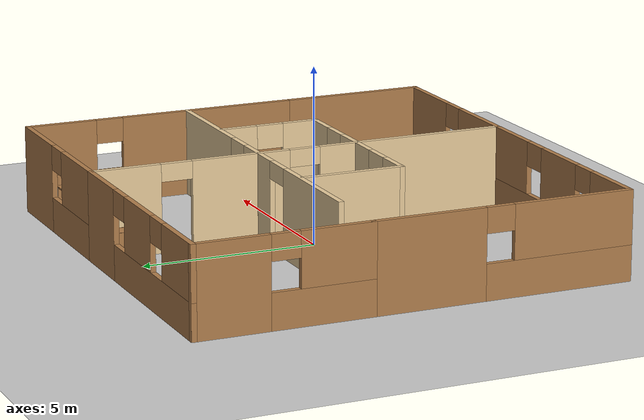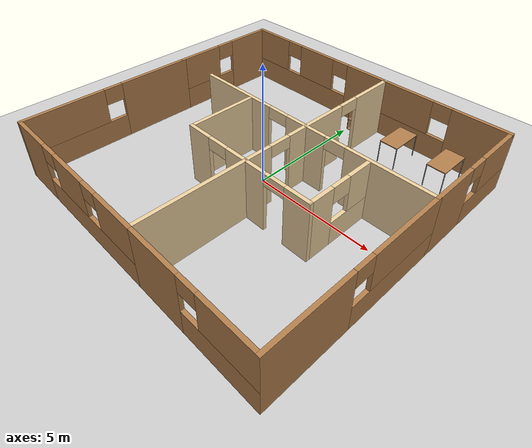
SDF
<sdf version="1.6">
 <world name="default">
  <model name="ground_plane">
   <static>1</static>
   <link name="link">
    <collision name="collision">
     <geometry><plane><normal>0 0 1</normal><size>100 100</size></plane></geometry>
     <surface><friction><ode><mu>100</mu><mu2>50</mu2></ode></friction></surface>
    </collision>
    <visual name="visual">
     <cast_shadows>0</cast_shadows>
     <geometry><plane><normal>0 0 1</normal><size>100 100</size></plane></geometry>
     <material>
      <script><uri>file://media/materials/scripts/gazebo.material</uri><name>Gazebo/Grey</name></script>
     </material>
    </visual>
   </link>
  </model>
  <model name="building">
   <pose>-0.005642 -0.05216 0 0 -0 1.56564</pose>
   <link name="Wall_40">
    <pose>-2.425 -6.35 0 0 -0 0</pose>
    <visual name="Wall_40_Visual_0">
     <pose>-2.0357 0 1.25 0 -0 0</pose>
     <geometry><box><size>3.42859 0.15 2.5</size></box></geometry>
     <material>
      <script><uri>file://media/materials/scripts/gazebo.material</uri><name>Gazebo/Wood</name></script>
      <ambient>0.921569 0.807843 0.615686 1</ambient>
     </material>
    </visual>
    <collision name="Wall_40_Collision_0">
     <geometry><box><size>3.42859 0.15 2.5</size></box></geometry>
     <pose>-2.0357 0 1.25 0 -0 0</pose>
    </collision>
    <visual name="Wall_40_Visual_1">
     <pose>1.7143 0 0.5 0 -0 0</pose>
     <geometry><box><size>4.07141 0.15 1</size></box></geometry>
     <material>
      <script><uri>file://media/materials/scripts/gazebo.material</uri><name>Gazebo/Wood</name></script>
      <ambient>0.921569 0.807843 0.615686 1</ambient>
     </material>
    </visual>
    <collision name="Wall_40_Collision_1">
     <geometry><box><size>4.07141 0.15 1</size></box></geometry>
     <pose>1.7143 0 0.5 0 -0 0</pose>
    </collision>
    <visual name="Wall_40_Visual_2">
     <pose>2.1143 0 1.75 0 -0 0</pose>
     <geometry><box><size>3.27141 0.15 1.5</size></box></geometry>
     <material>
      <script><uri>file://media/materials/scripts/gazebo.material</uri><name>Gazebo/Wood</name></script>
      <ambient>0.921569 0.807843 0.615686 1</ambient>
     </material>
    </visual>
    <collision name="Wall_40_Collision_2">
     <geometry><box><size>3.27141 0.15 1.5</size></box></geometry>
     <pose>2.1143 0 1.75 0 -0 0</pose>
    </collision>
    <visual name="Wall_40_Visual_3">
     <pose>0.078591 0 2.15 0 -0 0</pose>
     <geometry><box><size>0.8 0.15 0.7</size></box></geometry>
     <material>
      <script><uri>file://media/materials/scripts/gazebo.material</uri><name>Gazebo/Wood</name></script>
      <ambient>0.921569 0.807843 0.615686 1</ambient>
     </material>
    </visual>
    <collision name="Wall_40_Collision_3">
     <geometry><box><size>0.8 0.15 0.7</size></box></geometry>
     <pose>0.078591 0 2.15 0 -0 0</pose>
    </collision>
   </link>
   <link name="Wall_42">
    <pose>1.25 -3.675 0 0 -0 1.5708</pose>
    <visual name="Wall_42_Visual_0">
     <pose>-0.950683 0 1.25 0 -0 0</pose>
     <geometry><box><size>3.59863 0.15 2.5</size></box></geometry>
     <material>
      <script><uri>file://media/materials/scripts/gazebo.material</uri><name>Gazebo/Grey</name></script>
      <ambient>0.921569 0.807843 0.615686 1</ambient>
     </material>
    </visual>
    <collision name="Wall_42_Collision_0">
     <geometry><box><size>3.59863 0.15 2.5</size></box></geometry>
     <pose>-0.950683 0 1.25 0 -0 0</pose>
    </collision>
    <visual name="Wall_42_Visual_1">
     <pose>2.24932 0 1.25 0 -0 0</pose>
     <geometry><box><size>1.00137 0.15 2.5</size></box></geometry>
     <material>
      <script><uri>file://media/materials/scripts/gazebo.material</uri><name>Gazebo/Grey</name></script>
      <ambient>0.921569 0.807843 0.615686 1</ambient>
     </material>
    </visual>
    <collision name="Wall_42_Collision_1">
     <geometry><box><size>1.00137 0.15 2.5</size></box></geometry>
     <pose>2.24932 0 1.25 0 -0 0</pose>
    </collision>
    <visual name="Wall_42_Visual_2">
     <pose>1.29863 0 2.25 0 -0 0</pose>
     <geometry><box><size>0.9 0.15 0.5</size></box></geometry>
     <material>
      <script><uri>file://media/materials/scripts/gazebo.material</uri><name>Gazebo/Grey</name></script>
      <ambient>0.921569 0.807843 0.615686 1</ambient>
     </material>
    </visual>
    <collision name="Wall_42_Collision_2">
     <geometry><box><size>0.9 0.15 0.5</size></box></geometry>
     <pose>1.29863 0 2.25 0 -0 0</pose>
    </collision>
   </link>
   <link name="Wall_44">
    <pose>3.675 -6.35 0 0 -0 0</pose>
    <visual name="Wall_44_Visual_0">
     <pose>-1.44849 0 1.25 0 -0 0</pose>
     <geometry><box><size>2.10302 0.15 2.5</size></box></geometry>
     <material>
      <script><uri>file://media/materials/scripts/gazebo.material</uri><name>Gazebo/Wood</name></script>
      <ambient>0.921569 0.807843 0.615686 1</ambient>
     </material>
    </visual>
    <collision name="Wall_44_Collision_0">
     <geometry><box><size>2.10302 0.15 2.5</size></box></geometry>
     <pose>-1.44849 0 1.25 0 -0 0</pose>
    </collision>
    <visual name="Wall_44_Visual_1">
     <pose>1.05151 0 0.5 0 -0 0</pose>
     <geometry><box><size>2.89698 0.15 1</size></box></geometry>
     <material>
      <script><uri>file://media/materials/scripts/gazebo.material</uri><name>Gazebo/Wood</name></script>
      <ambient>0.921569 0.807843 0.615686 1</ambient>
     </material>
    </visual>
    <collision name="Wall_44_Collision_1">
     <geometry><box><size>2.89698 0.15 1</size></box></geometry>
     <pose>1.05151 0 0.5 0 -0 0</pose>
    </collision>
    <visual name="Wall_44_Visual_2">
     <pose>1.45151 0 1.75 0 -0 0</pose>
     <geometry><box><size>2.09698 0.15 1.5</size></box></geometry>
     <material>
      <script><uri>file://media/materials/scripts/gazebo.material</uri><name>Gazebo/Wood</name></script>
      <ambient>0.921569 0.807843 0.615686 1</ambient>
     </material>
    </visual>
    <collision name="Wall_44_Collision_2">
     <geometry><box><size>2.09698 0.15 1.5</size></box></geometry>
     <pose>1.45151 0 1.75 0 -0 0</pose>
    </collision>
    <visual name="Wall_44_Visual_3">
     <pose>0.003019 0 2.15 0 -0 0</pose>
     <geometry><box><size>0.8 0.15 0.7</size></box></geometry>
     <material>
      <script><uri>file://media/materials/scripts/gazebo.material</uri><name>Gazebo/Wood</name></script>
      <ambient>0.921569 0.807843 0.615686 1</ambient>
     </material>
    </visual>
    <collision name="Wall_44_Collision_3">
     <geometry><box><size>0.8 0.15 0.7</size></box></geometry>
     <pose>0.003019 0 2.15 0 -0 0</pose>
    </collision>
   </link>
   <link name="Wall_46">
    <pose>6.1 -3.675 0 0 -0 1.5708</pose>
    <visual name="Wall_46_Visual_0">
     <pose>-1.57528 0 1.25 0 -0 0</pose>
     <geometry><box><size>2.34944 0.15 2.5</size></box></geometry>
     <material>
      <script><uri>file://media/materials/scripts/gazebo.material</uri><name>Gazebo/Wood</name></script>
      <ambient>0.921569 0.807843 0.615686 1</ambient>
     </material>
    </visual>
    <collision name="Wall_46_Collision_0">
     <geometry><box><size>2.34944 0.15 2.5</size></box></geometry>
     <pose>-1.57528 0 1.25 0 -0 0</pose>
    </collision>
    <visual name="Wall_46_Visual_1">
     <pose>1.17472 0 0.5 0 -0 0</pose>
     <geometry><box><size>3.15056 0.15 1</size></box></geometry>
     <material>
      <script><uri>file://media/materials/scripts/gazebo.material</uri><name>Gazebo/Wood</name></script>
      <ambient>0.921569 0.807843 0.615686 1</ambient>
     </material>
    </visual>
    <collision name="Wall_46_Collision_1">
     <geometry><box><size>3.15056 0.15 1</size></box></geometry>
     <pose>1.17472 0 0.5 0 -0 0</pose>
    </collision>
    <visual name="Wall_46_Visual_2">
     <pose>1.57472 0 1.75 0 -0 0</pose>
     <geometry><box><size>2.35056 0.15 1.5</size></box></geometry>
     <material>
      <script><uri>file://media/materials/scripts/gazebo.material</uri><name>Gazebo/Wood</name></script>
      <ambient>0.921569 0.807843 0.615686 1</ambient>
     </material>
    </visual>
    <collision name="Wall_46_Collision_2">
     <geometry><box><size>2.35056 0.15 1.5</size></box></geometry>
     <pose>1.57472 0 1.75 0 -0 0</pose>
    </collision>
    <visual name="Wall_46_Visual_3">
     <pose>-0.000563 0 2.15 0 -0 0</pose>
     <geometry><box><size>0.8 0.15 0.7</size></box></geometry>
     <material>
      <script><uri>file://media/materials/scripts/gazebo.material</uri><name>Gazebo/Wood</name></script>
      <ambient>0.921569 0.807843 0.615686 1</ambient>
     </material>
    </visual>
    <collision name="Wall_46_Collision_3">
     <geometry><box><size>0.8 0.15 0.7</size></box></geometry>
     <pose>-0.000563 0 2.15 0 -0 0</pose>
    </collision>
   </link>
   <link name="Wall_48">
    <pose>3.67486 -1.00009 0 0 0 -3.14155</pose>
    <visual name="Wall_48_Visual_0">
     <pose>-1.47793 0 1.25 0 -0 0</pose>
     <geometry><box><size>2.04441 0.15 2.5</size></box></geometry>
     <material>
      <script><uri>file://media/materials/scripts/gazebo.material</uri><name>Gazebo/Grey</name></script>
      <ambient>0.921569 0.807843 0.615686 1</ambient>
     </material>
    </visual>
    <collision name="Wall_48_Collision_0">
     <geometry><box><size>2.04441 0.15 2.5</size></box></geometry>
     <pose>-1.47793 0 1.25 0 -0 0</pose>
    </collision>
    <visual name="Wall_48_Visual_1">
     <pose>1.47221 0 1.25 0 -0 0</pose>
     <geometry><box><size>2.05587 0.15 2.5</size></box></geometry>
     <material>
      <script><uri>file://media/materials/scripts/gazebo.material</uri><name>Gazebo/Grey</name></script>
      <ambient>0.921569 0.807843 0.615686 1</ambient>
     </material>
    </visual>
    <collision name="Wall_48_Collision_1">
     <geometry><box><size>2.05587 0.15 2.5</size></box></geometry>
     <pose>1.47221 0 1.25 0 -0 0</pose>
    </collision>
    <visual name="Wall_48_Visual_2">
     <pose>-0.005726 0 2.25 0 -0 0</pose>
     <geometry><box><size>0.9 0.15 0.5</size></box></geometry>
     <material>
      <script><uri>file://media/materials/scripts/gazebo.material</uri><name>Gazebo/Grey</name></script>
      <ambient>0.921569 0.807843 0.615686 1</ambient>
     </material>
    </visual>
    <collision name="Wall_48_Collision_2">
     <geometry><box><size>0.9 0.15 0.5</size></box></geometry>
     <pose>-0.005726 0 2.25 0 -0 0</pose>
    </collision>
   </link>
   <link name="Wall_50">
    <pose>-0.22106 -1.00009 0 0 -0 3.14153</pose>
    <visual name="Wall_50_Visual_0">
     <pose>-1.05843 0 1.25 0 -0 0</pose>
     <geometry><box><size>0.974695 0.15 2.5</size></box></geometry>
     <material>
      <script><uri>file://media/materials/scripts/gazebo.material</uri><name>Gazebo/Grey</name></script>
      <ambient>0.921569 0.807843 0.615686 1</ambient>
     </material>
    </visual>
    <collision name="Wall_50_Collision_0">
     <geometry><box><size>0.974695 0.15 2.5</size></box></geometry>
     <pose>-1.05843 0 1.25 0 -0 0</pose>
    </collision>
    <visual name="Wall_50_Visual_1">
     <pose>0.937348 0 1.25 0 -0 0</pose>
     <geometry><box><size>1.21686 0.15 2.5</size></box></geometry>
     <material>
      <script><uri>file://media/materials/scripts/gazebo.material</uri><name>Gazebo/Grey</name></script>
      <ambient>0.921569 0.807843 0.615686 1</ambient>
     </material>
    </visual>
    <collision name="Wall_50_Collision_1">
     <geometry><box><size>1.21686 0.15 2.5</size></box></geometry>
     <pose>0.937348 0 1.25 0 -0 0</pose>
    </collision>
    <visual name="Wall_50_Visual_2">
     <pose>-0.121083 0 2.25 0 -0 0</pose>
     <geometry><box><size>0.9 0.15 0.5</size></box></geometry>
     <material>
      <script><uri>file://media/materials/scripts/gazebo.material</uri><name>Gazebo/Grey</name></script>
      <ambient>0.921569 0.807843 0.615686 1</ambient>
     </material>
    </visual>
    <collision name="Wall_50_Collision_2">
     <geometry><box><size>0.9 0.15 0.5</size></box></geometry>
     <pose>-0.121083 0 2.25 0 -0 0</pose>
    </collision>
   </link>
   <link name="Wall_52">
    <pose>-1.69184 -2.425 0 0 0 -1.5708</pose>
    <visual name="Wall_52_Visual_0">
     <pose>-0.996807 0 1.25 0 -0 0</pose>
     <geometry><box><size>1.00639 0.15 2.5</size></box></geometry>
     <material>
      <script><uri>file://media/materials/scripts/gazebo.material</uri><name>Gazebo/Grey</name></script>
      <ambient>0.921569 0.807843 0.615686 1</ambient>
     </material>
    </visual>
    <collision name="Wall_52_Collision_0">
     <geometry><box><size>1.00639 0.15 2.5</size></box></geometry>
     <pose>-0.996807 0 1.25 0 -0 0</pose>
    </collision>
    <visual name="Wall_52_Visual_1">
     <pose>0.953193 0 1.25 0 -0 0</pose>
     <geometry><box><size>1.09362 0.15 2.5</size></box></geometry>
     <material>
      <script><uri>file://media/materials/scripts/gazebo.material</uri><name>Gazebo/Grey</name></script>
      <ambient>0.921569 0.807843 0.615686 1</ambient>
     </material>
    </visual>
    <collision name="Wall_52_Collision_1">
     <geometry><box><size>1.09362 0.15 2.5</size></box></geometry>
     <pose>0.953193 0 1.25 0 -0 0</pose>
    </collision>
    <visual name="Wall_52_Visual_2">
     <pose>-0.043615 0 2.25 0 -0 0</pose>
     <geometry><box><size>0.9 0.15 0.5</size></box></geometry>
     <material>
      <script><uri>file://media/materials/scripts/gazebo.material</uri><name>Gazebo/Grey</name></script>
      <ambient>0.921569 0.807843 0.615686 1</ambient>
     </material>
    </visual>
    <collision name="Wall_52_Collision_2">
     <geometry><box><size>0.9 0.15 0.5</size></box></geometry>
     <pose>-0.043615 0 2.25 0 -0 0</pose>
    </collision>
   </link>
   <link name="Wall_54">
    <pose>-0.266839 -3.85 0 0 -0 0</pose>
    <visual name="Wall_54_Visual_0">
     <pose>-0.949915 0 1.25 0 -0 0</pose>
     <geometry><box><size>1.10017 0.15 2.5</size></box></geometry>
     <material>
      <script><uri>file://media/materials/scripts/gazebo.material</uri><name>Gazebo/Grey</name></script>
      <ambient>0.921569 0.807843 0.615686 1</ambient>
     </material>
    </visual>
    <collision name="Wall_54_Collision_0">
     <geometry><box><size>1.10017 0.15 2.5</size></box></geometry>
     <pose>-0.949915 0 1.25 0 -0 0</pose>
    </collision>
    <visual name="Wall_54_Visual_1">
     <pose>0.550085 0 0.5 0 -0 0</pose>
     <geometry><box><size>1.89983 0.15 1</size></box></geometry>
     <material>
      <script><uri>file://media/materials/scripts/gazebo.material</uri><name>Gazebo/Grey</name></script>
      <ambient>0.921569 0.807843 0.615686 1</ambient>
     </material>
    </visual>
    <collision name="Wall_54_Collision_1">
     <geometry><box><size>1.89983 0.15 1</size></box></geometry>
     <pose>0.550085 0 0.5 0 -0 0</pose>
    </collision>
    <visual name="Wall_54_Visual_2">
     <pose>0.950085 0 1.75 0 -0 0</pose>
     <geometry><box><size>1.09983 0.15 1.5</size></box></geometry>
     <material>
      <script><uri>file://media/materials/scripts/gazebo.material</uri><name>Gazebo/Grey</name></script>
      <ambient>0.921569 0.807843 0.615686 1</ambient>
     </material>
    </visual>
    <collision name="Wall_54_Collision_2">
     <geometry><box><size>1.09983 0.15 1.5</size></box></geometry>
     <pose>0.950085 0 1.75 0 -0 0</pose>
    </collision>
    <visual name="Wall_54_Visual_3">
     <pose>0.000171 0 2.15 0 -0 0</pose>
     <geometry><box><size>0.8 0.15 0.7</size></box></geometry>
     <material>
      <script><uri>file://media/materials/scripts/gazebo.material</uri><name>Gazebo/Grey</name></script>
      <ambient>0.921569 0.807843 0.615686 1</ambient>
     </material>
    </visual>
    <collision name="Wall_54_Collision_3">
     <geometry><box><size>0.8 0.15 0.7</size></box></geometry>
     <pose>0.000171 0 2.15 0 -0 0</pose>
    </collision>
   </link>
   <link name="Wall_57">
    <pose>-1.69184 0.425 0 0 -0 1.5708</pose>
    <visual name="Wall_57_Visual_0">
     <pose>-0.995539 0 1.25 0 -0 0</pose>
     <geometry><box><size>1.00892 0.15 2.5</size></box></geometry>
     <material>
      <script><uri>file://media/materials/scripts/gazebo.material</uri><name>Gazebo/Grey</name></script>
      <ambient>0.921569 0.807843 0.615686 1</ambient>
     </material>
    </visual>
    <collision name="Wall_57_Collision_0">
     <geometry><box><size>1.00892 0.15 2.5</size></box></geometry>
     <pose>-0.995539 0 1.25 0 -0 0</pose>
    </collision>
    <visual name="Wall_57_Visual_1">
     <pose>0.954461 0 1.25 0 -0 0</pose>
     <geometry><box><size>1.09108 0.15 2.5</size></box></geometry>
     <material>
      <script><uri>file://media/materials/scripts/gazebo.material</uri><name>Gazebo/Grey</name></script>
      <ambient>0.921569 0.807843 0.615686 1</ambient>
     </material>
    </visual>
    <collision name="Wall_57_Collision_1">
     <geometry><box><size>1.09108 0.15 2.5</size></box></geometry>
     <pose>0.954461 0 1.25 0 -0 0</pose>
    </collision>
    <visual name="Wall_57_Visual_2">
     <pose>-0.041079 0 2.25 0 -0 0</pose>
     <geometry><box><size>0.9 0.15 0.5</size></box></geometry>
     <material>
      <script><uri>file://media/materials/scripts/gazebo.material</uri><name>Gazebo/Grey</name></script>
      <ambient>0.921569 0.807843 0.615686 1</ambient>
     </material>
    </visual>
    <collision name="Wall_57_Collision_2">
     <geometry><box><size>0.9 0.15 0.5</size></box></geometry>
     <pose>-0.041079 0 2.25 0 -0 0</pose>
    </collision>
   </link>
   <link name="Wall_59">
    <collision name="Wall_59_Collision">
     <geometry><box><size>3 0.15 2.5</size></box></geometry>
     <pose>0 0 1.25 0 -0 0</pose>
    </collision>
    <visual name="Wall_59_Visual">
     <pose>0 0 1.25 0 -0 0</pose>
     <geometry><box><size>3 0.15 2.5</size></box></geometry>
     <material>
      <script><uri>file://media/materials/scripts/gazebo.material</uri><name>Gazebo/Grey</name></script>
      <ambient>0.921569 0.807843 0.615686 1</ambient>
     </material>
    </visual>
    <pose>-0.266839 1.85 0 0 -0 0</pose>
   </link>
   <link name="Wall_66">
    <pose>1.24972 1.67482 0 0 -0 1.5708</pose>
    <visual name="Wall_66_Visual_0">
     <pose>-2.24774 0 1.25 0 -0 0</pose>
     <geometry><box><size>1.00452 0.15 2.5</size></box></geometry>
     <material>
      <script><uri>file://media/materials/scripts/gazebo.material</uri><name>Gazebo/Grey</name></script>
      <ambient>0.921569 0.807843 0.615686 1</ambient>
     </material>
    </visual>
    <collision name="Wall_66_Collision_0">
     <geometry><box><size>1.00452 0.15 2.5</size></box></geometry>
     <pose>-2.24774 0 1.25 0 -0 0</pose>
    </collision>
    <visual name="Wall_66_Visual_1">
     <pose>0.952259 0 1.25 0 -0 0</pose>
     <geometry><box><size>3.59548 0.15 2.5</size></box></geometry>
     <material>
      <script><uri>file://media/materials/scripts/gazebo.material</uri><name>Gazebo/Grey</name></script>
      <ambient>0.921569 0.807843 0.615686 1</ambient>
     </material>
    </visual>
    <collision name="Wall_66_Collision_1">
     <geometry><box><size>3.59548 0.15 2.5</size></box></geometry>
     <pose>0.952259 0 1.25 0 -0 0</pose>
    </collision>
    <visual name="Wall_66_Visual_2">
     <pose>-1.29548 0 2.25 0 -0 0</pose>
     <geometry><box><size>0.9 0.15 0.5</size></box></geometry>
     <material>
      <script><uri>file://media/materials/scripts/gazebo.material</uri><name>Gazebo/Grey</name></script>
      <ambient>0.921569 0.807843 0.615686 1</ambient>
     </material>
    </visual>
    <collision name="Wall_66_Collision_2">
     <geometry><box><size>0.9 0.15 0.5</size></box></geometry>
     <pose>-1.29548 0 2.25 0 -0 0</pose>
    </collision>
   </link>
   <link name="Wall_68">
    <pose>6.1 2.675 0 0 -0 1.5708</pose>
    <visual name="Wall_68_Visual_0">
     <pose>-2.7519 0 1.25 0 -0 0</pose>
     <geometry><box><size>1.99621 0.15 2.5</size></box></geometry>
     <material>
      <script><uri>file://media/materials/scripts/gazebo.material</uri><name>Gazebo/Wood</name></script>
      <ambient>0.921569 0.807843 0.615686 1</ambient>
     </material>
    </visual>
    <collision name="Wall_68_Collision_0">
     <geometry><box><size>1.99621 0.15 2.5</size></box></geometry>
     <pose>-2.7519 0 1.25 0 -0 0</pose>
    </collision>
    <visual name="Wall_68_Visual_1">
     <pose>0.998103 0 0.5 0 -0 0</pose>
     <geometry><box><size>5.50379 0.15 1</size></box></geometry>
     <material>
      <script><uri>file://media/materials/scripts/gazebo.material</uri><name>Gazebo/Wood</name></script>
      <ambient>0.921569 0.807843 0.615686 1</ambient>
     </material>
    </visual>
    <collision name="Wall_68_Collision_1">
     <geometry><box><size>5.50379 0.15 1</size></box></geometry>
     <pose>0.998103 0 0.5 0 -0 0</pose>
    </collision>
    <visual name="Wall_68_Visual_2">
     <pose>0.001458 0 1.75 0 -0 0</pose>
     <geometry><box><size>1.9105 0.15 1.5</size></box></geometry>
     <material>
      <script><uri>file://media/materials/scripts/gazebo.material</uri><name>Gazebo/Wood</name></script>
      <ambient>0.921569 0.807843 0.615686 1</ambient>
     </material>
    </visual>
    <collision name="Wall_68_Collision_2">
     <geometry><box><size>1.9105 0.15 1.5</size></box></geometry>
     <pose>0.001458 0 1.75 0 -0 0</pose>
    </collision>
    <visual name="Wall_68_Visual_3">
     <pose>2.75335 0 1.75 0 -0 0</pose>
     <geometry><box><size>1.99329 0.15 1.5</size></box></geometry>
     <material>
      <script><uri>file://media/materials/scripts/gazebo.material</uri><name>Gazebo/Wood</name></script>
      <ambient>0.921569 0.807843 0.615686 1</ambient>
     </material>
    </visual>
    <collision name="Wall_68_Collision_3">
     <geometry><box><size>1.99329 0.15 1.5</size></box></geometry>
     <pose>2.75335 0 1.75 0 -0 0</pose>
    </collision>
    <visual name="Wall_68_Visual_4">
     <pose>-1.35379 0 2.15 0 -0 0</pose>
     <geometry><box><size>0.8 0.15 0.7</size></box></geometry>
     <material>
      <script><uri>file://media/materials/scripts/gazebo.material</uri><name>Gazebo/Wood</name></script>
      <ambient>0.921569 0.807843 0.615686 1</ambient>
     </material>
    </visual>
    <collision name="Wall_68_Collision_4">
     <geometry><box><size>0.8 0.15 0.7</size></box></geometry>
     <pose>-1.35379 0 2.15 0 -0 0</pose>
    </collision>
    <visual name="Wall_68_Visual_5">
     <pose>1.35671 0 2.15 0 -0 0</pose>
     <geometry><box><size>0.8 0.15 0.7</size></box></geometry>
     <material>
      <script><uri>file://media/materials/scripts/gazebo.material</uri><name>Gazebo/Wood</name></script>
      <ambient>0.921569 0.807843 0.615686 1</ambient>
     </material>
    </visual>
    <collision name="Wall_68_Collision_5">
     <geometry><box><size>0.8 0.15 0.7</size></box></geometry>
     <pose>1.35671 0 2.15 0 -0 0</pose>
    </collision>
   </link>
   <link name="Wall_70">
    <pose>3.675 6.35 0 0 -0 3.14159</pose>
    <visual name="Wall_70_Visual_0">
     <pose>-1.43588 0 1.25 0 -0 0</pose>
     <geometry><box><size>2.12825 0.15 2.5</size></box></geometry>
     <material>
      <script><uri>file://media/materials/scripts/gazebo.material</uri><name>Gazebo/Wood</name></script>
      <ambient>0.921569 0.807843 0.615686 1</ambient>
     </material>
    </visual>
    <collision name="Wall_70_Collision_0">
     <geometry><box><size>2.12825 0.15 2.5</size></box></geometry>
     <pose>-1.43588 0 1.25 0 -0 0</pose>
    </collision>
    <visual name="Wall_70_Visual_1">
     <pose>1.06412 0 0.5 0 -0 0</pose>
     <geometry><box><size>2.87175 0.15 1</size></box></geometry>
     <material>
      <script><uri>file://media/materials/scripts/gazebo.material</uri><name>Gazebo/Wood</name></script>
      <ambient>0.921569 0.807843 0.615686 1</ambient>
     </material>
    </visual>
    <collision name="Wall_70_Collision_1">
     <geometry><box><size>2.87175 0.15 1</size></box></geometry>
     <pose>1.06412 0 0.5 0 -0 0</pose>
    </collision>
    <visual name="Wall_70_Visual_2">
     <pose>1.46412 0 1.75 0 -0 0</pose>
     <geometry><box><size>2.07176 0.15 1.5</size></box></geometry>
     <material>
      <script><uri>file://media/materials/scripts/gazebo.material</uri><name>Gazebo/Wood</name></script>
      <ambient>0.921569 0.807843 0.615686 1</ambient>
     </material>
    </visual>
    <collision name="Wall_70_Collision_2">
     <geometry><box><size>2.07176 0.15 1.5</size></box></geometry>
     <pose>1.46412 0 1.75 0 -0 0</pose>
    </collision>
    <visual name="Wall_70_Visual_3">
     <pose>0.028245 0 2.15 0 -0 0</pose>
     <geometry><box><size>0.8 0.15 0.7</size></box></geometry>
     <material>
      <script><uri>file://media/materials/scripts/gazebo.material</uri><name>Gazebo/Wood</name></script>
      <ambient>0.921569 0.807843 0.615686 1</ambient>
     </material>
    </visual>
    <collision name="Wall_70_Collision_3">
     <geometry><box><size>0.8 0.15 0.7</size></box></geometry>
     <pose>0.028245 0 2.15 0 -0 0</pose>
    </collision>
   </link>
   <link name="Wall_72">
    <pose>-2.425 6.35 0 0 -0 3.14159</pose>
    <visual name="Wall_72_Visual_0">
     <pose>-2.13285 0 1.25 0 -0 0</pose>
     <geometry><box><size>3.2343 0.15 2.5</size></box></geometry>
     <material>
      <script><uri>file://media/materials/scripts/gazebo.material</uri><name>Gazebo/Wood</name></script>
      <ambient>0.921569 0.807843 0.615686 1</ambient>
     </material>
    </visual>
    <collision name="Wall_72_Collision_0">
     <geometry><box><size>3.2343 0.15 2.5</size></box></geometry>
     <pose>-2.13285 0 1.25 0 -0 0</pose>
    </collision>
    <visual name="Wall_72_Visual_1">
     <pose>1.61715 0 0.5 0 -0 0</pose>
     <geometry><box><size>4.2657 0.15 1</size></box></geometry>
     <material>
      <script><uri>file://media/materials/scripts/gazebo.material</uri><name>Gazebo/Wood</name></script>
      <ambient>0.921569 0.807843 0.615686 1</ambient>
     </material>
    </visual>
    <collision name="Wall_72_Collision_1">
     <geometry><box><size>4.2657 0.15 1</size></box></geometry>
     <pose>1.61715 0 0.5 0 -0 0</pose>
    </collision>
    <visual name="Wall_72_Visual_2">
     <pose>2.01715 0 1.75 0 -0 0</pose>
     <geometry><box><size>3.4657 0.15 1.5</size></box></geometry>
     <material>
      <script><uri>file://media/materials/scripts/gazebo.material</uri><name>Gazebo/Wood</name></script>
      <ambient>0.921569 0.807843 0.615686 1</ambient>
     </material>
    </visual>
    <collision name="Wall_72_Collision_2">
     <geometry><box><size>3.4657 0.15 1.5</size></box></geometry>
     <pose>2.01715 0 1.75 0 -0 0</pose>
    </collision>
    <visual name="Wall_72_Visual_3">
     <pose>-0.115701 0 2.15 0 -0 0</pose>
     <geometry><box><size>0.8 0.15 0.7</size></box></geometry>
     <material>
      <script><uri>file://media/materials/scripts/gazebo.material</uri><name>Gazebo/Wood</name></script>
      <ambient>0.921569 0.807843 0.615686 1</ambient>
     </material>
    </visual>
    <collision name="Wall_72_Collision_3">
     <geometry><box><size>0.8 0.15 0.7</size></box></geometry>
     <pose>-0.115701 0 2.15 0 -0 0</pose>
    </collision>
   </link>
   <link name="Wall_74">
    <pose>-6.1 2.675 0 0 0 -1.5708</pose>
    <visual name="Wall_74_Visual_0">
     <pose>-2.74951 0 1.25 0 -0 0</pose>
     <geometry><box><size>2.00098 0.15 2.5</size></box></geometry>
     <material>
      <script><uri>file://media/materials/scripts/gazebo.material</uri><name>Gazebo/Wood</name></script>
      <ambient>0.921569 0.807843 0.615686 1</ambient>
     </material>
    </visual>
    <collision name="Wall_74_Collision_0">
     <geometry><box><size>2.00098 0.15 2.5</size></box></geometry>
     <pose>-2.74951 0 1.25 0 -0 0</pose>
    </collision>
    <visual name="Wall_74_Visual_1">
     <pose>1.00049 0 0.5 0 -0 0</pose>
     <geometry><box><size>5.49902 0.15 1</size></box></geometry>
     <material>
      <script><uri>file://media/materials/scripts/gazebo.material</uri><name>Gazebo/Wood</name></script>
      <ambient>0.921569 0.807843 0.615686 1</ambient>
     </material>
    </visual>
    <collision name="Wall_74_Collision_1">
     <geometry><box><size>5.49902 0.15 1</size></box></geometry>
     <pose>1.00049 0 0.5 0 -0 0</pose>
    </collision>
    <visual name="Wall_74_Visual_2">
     <pose>0.005454 0 1.75 0 -0 0</pose>
     <geometry><box><size>1.90894 0.15 1.5</size></box></geometry>
     <material>
      <script><uri>file://media/materials/scripts/gazebo.material</uri><name>Gazebo/Wood</name></script>
      <ambient>0.921569 0.807843 0.615686 1</ambient>
     </material>
    </visual>
    <collision name="Wall_74_Collision_2">
     <geometry><box><size>1.90894 0.15 1.5</size></box></geometry>
     <pose>0.005454 0 1.75 0 -0 0</pose>
    </collision>
    <visual name="Wall_74_Visual_3">
     <pose>2.75496 0 1.75 0 -0 0</pose>
     <geometry><box><size>1.99008 0.15 1.5</size></box></geometry>
     <material>
      <script><uri>file://media/materials/scripts/gazebo.material</uri><name>Gazebo/Wood</name></script>
      <ambient>0.921569 0.807843 0.615686 1</ambient>
     </material>
    </visual>
    <collision name="Wall_74_Collision_3">
     <geometry><box><size>1.99008 0.15 1.5</size></box></geometry>
     <pose>2.75496 0 1.75 0 -0 0</pose>
    </collision>
    <visual name="Wall_74_Visual_4">
     <pose>-1.34902 0 2.15 0 -0 0</pose>
     <geometry><box><size>0.8 0.15 0.7</size></box></geometry>
     <material>
      <script><uri>file://media/materials/scripts/gazebo.material</uri><name>Gazebo/Wood</name></script>
      <ambient>0.921569 0.807843 0.615686 1</ambient>
     </material>
    </visual>
    <collision name="Wall_74_Collision_4">
     <geometry><box><size>0.8 0.15 0.7</size></box></geometry>
     <pose>-1.34902 0 2.15 0 -0 0</pose>
    </collision>
    <visual name="Wall_74_Visual_5">
     <pose>1.35992 0 2.15 0 -0 0</pose>
     <geometry><box><size>0.8 0.15 0.7</size></box></geometry>
     <material>
      <script><uri>file://media/materials/scripts/gazebo.material</uri><name>Gazebo/Wood</name></script>
      <ambient>0.921569 0.807843 0.615686 1</ambient>
     </material>
    </visual>
    <collision name="Wall_74_Collision_5">
     <geometry><box><size>0.8 0.15 0.7</size></box></geometry>
     <pose>1.35992 0 2.15 0 -0 0</pose>
    </collision>
   </link>
   <link name="Wall_76">
    <collision name="Wall_76_Collision">
     <geometry><box><size>4.5 0.15 2.5</size></box></geometry>
     <pose>0 0 1.25 0 -0 0</pose>
    </collision>
    <visual name="Wall_76_Visual">
     <pose>0 0 1.25 0 -0 0</pose>
     <geometry><box><size>4.5 0.15 2.5</size></box></geometry>
     <material>
      <script><uri>file://media/materials/scripts/gazebo.material</uri><name>Gazebo/Grey</name></script>
      <ambient>0.921569 0.807843 0.615686 1</ambient>
     </material>
    </visual>
    <pose>-3.925 -1 0 0 -0 0</pose>
   </link>
   <link name="Wall_78">
    <pose>-6.1 -3.675 0 0 0 -1.5708</pose>
    <visual name="Wall_78_Visual_0">
     <pose>-1.5652 0 1.25 0 -0 0</pose>
     <geometry><box><size>2.36961 0.15 2.5</size></box></geometry>
     <material>
      <script><uri>file://media/materials/scripts/gazebo.material</uri><name>Gazebo/Wood</name></script>
      <ambient>0.921569 0.807843 0.615686 1</ambient>
     </material>
    </visual>
    <collision name="Wall_78_Collision_0">
     <geometry><box><size>2.36961 0.15 2.5</size></box></geometry>
     <pose>-1.5652 0 1.25 0 -0 0</pose>
    </collision>
    <visual name="Wall_78_Visual_1">
     <pose>1.1848 0 0.5 0 -0 0</pose>
     <geometry><box><size>3.13039 0.15 1</size></box></geometry>
     <material>
      <script><uri>file://media/materials/scripts/gazebo.material</uri><name>Gazebo/Wood</name></script>
      <ambient>0.921569 0.807843 0.615686 1</ambient>
     </material>
    </visual>
    <collision name="Wall_78_Collision_1">
     <geometry><box><size>3.13039 0.15 1</size></box></geometry>
     <pose>1.1848 0 0.5 0 -0 0</pose>
    </collision>
    <visual name="Wall_78_Visual_2">
     <pose>1.5848 0 1.75 0 -0 0</pose>
     <geometry><box><size>2.33039 0.15 1.5</size></box></geometry>
     <material>
      <script><uri>file://media/materials/scripts/gazebo.material</uri><name>Gazebo/Wood</name></script>
      <ambient>0.921569 0.807843 0.615686 1</ambient>
     </material>
    </visual>
    <collision name="Wall_78_Collision_2">
     <geometry><box><size>2.33039 0.15 1.5</size></box></geometry>
     <pose>1.5848 0 1.75 0 -0 0</pose>
    </collision>
    <visual name="Wall_78_Visual_3">
     <pose>0.019608 0 2.15 0 -0 0</pose>
     <geometry><box><size>0.8 0.15 0.7</size></box></geometry>
     <material>
      <script><uri>file://media/materials/scripts/gazebo.material</uri><name>Gazebo/Wood</name></script>
      <ambient>0.921569 0.807843 0.615686 1</ambient>
     </material>
    </visual>
    <collision name="Wall_78_Collision_3">
     <geometry><box><size>0.8 0.15 0.7</size></box></geometry>
     <pose>0.019608 0 2.15 0 -0 0</pose>
    </collision>
   </link>
   <static>1</static>
  </model>
  <model name="table_clone_0">
   <static>0</static>
   <link name="link">
    <collision name="surface">
     <pose>0 0 1 0 -0 0</pose>
     <geometry><box><size>1.5 0.8 0.03</size></box></geometry>
     <surface><friction><ode><mu>0.6</mu><mu2>0.6</mu2></ode></friction></surface>
    </collision>
    <visual name="visual1">
     <pose>0 0 1 0 -0 0</pose>
     <geometry><box><size>1.4 0.8 0.04</size></box></geometry>
     <material>
      <script><uri>file://media/materials/scripts/gazebo.material</uri><name>Gazebo/Wood</name></script>
     </material>
    </visual>
    <collision name="front_left_leg">
     <pose>0.68 0.38 0.5 0 -0 0</pose>
     <geometry><cylinder><radius>0.02</radius><length>1</length></cylinder></geometry>
    </collision>
    <visual name="front_left_leg">
     <pose>0.68 0.38 0.5 0 -0 0</pose>
     <geometry><cylinder><radius>0.02</radius><length>1</length></cylinder></geometry>
     <material>
      <script><uri>file://media/materials/scripts/gazebo.material</uri><name>Gazebo/Grey</name></script>
     </material>
    </visual>
    <collision name="front_right_leg">
     <pose>0.68 -0.38 0.5 0 -0 0</pose>
     <geometry><cylinder><radius>0.02</radius><length>1</length></cylinder></geometry>
    </collision>
    <visual name="front_right_leg">
     <pose>0.68 -0.38 0.5 0 -0 0</pose>
     <geometry><cylinder><radius>0.02</radius><length>1</length></cylinder></geometry>
     <material>
      <script><uri>file://media/materials/scripts/gazebo.material</uri><name>Gazebo/Grey</name></script>
     </material>
    </visual>
    <collision name="back_right_leg">
     <pose>-0.68 -0.38 0.5 0 -0 0</pose>
     <geometry><cylinder><radius>0.02</radius><length>1</length></cylinder></geometry>
    </collision>
    <visual name="back_right_leg">
     <pose>-0.68 -0.38 0.5 0 -0 0</pose>
     <geometry><cylinder><radius>0.02</radius><length>1</length></cylinder></geometry>
     <material>
      <script><uri>file://media/materials/scripts/gazebo.material</uri><name>Gazebo/Grey</name></script>
     </material>
    </visual>
    <collision name="back_left_leg">
     <pose>-0.68 0.38 0.5 0 -0 0</pose>
     <geometry><cylinder><radius>0.02</radius><length>1</length></cylinder></geometry>
    </collision>
    <visual name="back_left_leg">
     <pose>-0.68 0.38 0.5 0 -0 0</pose>
     <geometry><cylinder><radius>0.02</radius><length>1</length></cylinder></geometry>
     <material>
      <script><uri>file://media/materials/scripts/gazebo.material</uri><name>Gazebo/Grey</name></script>
     </material>
    </visual>
    <inertial>
     <inertia><ixx>1</ixx><ixy>0</ixy><ixz>0</ixz><iyy>1</iyy><iyz>0</iyz><izz>1</izz></inertia>
     <mass>1</mass>
    </inertial>
   </link>
   <pose>2.71635 4.93026 -2e-06 0 -0 1.55794</pose>
  </model>
  <model name="table_clone_1">
   <static>0</static>
   <link name="link">
    <collision name="surface">
     <pose>0 0 1 0 -0 0</pose>
     <geometry><box><size>1.5 0.8 0.03</size></box></geometry>
     <surface><friction><ode><mu>0.6</mu><mu2>0.6</mu2></ode></friction></surface>
    </collision>
    <visual name="visual1">
     <pose>0 0 1 0 -0 0</pose>
     <geometry><box><size>1.4 0.8 0.04</size></box></geometry>
     <material>
      <script><uri>file://media/materials/scripts/gazebo.material</uri><name>Gazebo/Wood</name></script>
     </material>
    </visual>
    <collision name="front_left_leg">
     <pose>0.68 0.38 0.5 0 -0 0</pose>
     <geometry><cylinder><radius>0.02</radius><length>1</length></cylinder></geometry>
    </collision>
    <visual name="front_left_leg">
     <pose>0.68 0.38 0.5 0 -0 0</pose>
     <geometry><cylinder><radius>0.02</radius><length>1</length></cylinder></geometry>
     <material>
      <script><uri>file://media/materials/scripts/gazebo.material</uri><name>Gazebo/Grey</name></script>
     </material>
    </visual>
    <collision name="front_right_leg">
     <pose>0.68 -0.38 0.5 0 -0 0</pose>
     <geometry><cylinder><radius>0.02</radius><length>1</length></cylinder></geometry>
    </collision>
    <visual name="front_right_leg">
     <pose>0.68 -0.38 0.5 0 -0 0</pose>
     <geometry><cylinder><radius>0.02</radius><length>1</length></cylinder></geometry>
     <material>
      <script><uri>file://media/materials/scripts/gazebo.material</uri><name>Gazebo/Grey</name></script>
     </material>
    </visual>
    <collision name="back_right_leg">
     <pose>-0.68 -0.38 0.5 0 -0 0</pose>
     <geometry><cylinder><radius>0.02</radius><length>1</length></cylinder></geometry>
    </collision>
    <visual name="back_right_leg">
     <pose>-0.68 -0.38 0.5 0 -0 0</pose>
     <geometry><cylinder><radius>0.02</radius><length>1</length></cylinder></geometry>
     <material>
      <script><uri>file://media/materials/scripts/gazebo.material</uri><name>Gazebo/Grey</name></script>
     </material>
    </visual>
    <collision name="back_left_leg">
     <pose>-0.68 0.38 0.5 0 -0 0</pose>
     <geometry><cylinder><radius>0.02</radius><length>1</length></cylinder></geometry>
    </collision>
    <visual name="back_left_leg">
     <pose>-0.68 0.38 0.5 0 -0 0</pose>
     <geometry><cylinder><radius>0.02</radius><length>1</length></cylinder></geometry>
     <material>
      <script><uri>file://media/materials/scripts/gazebo.material</uri><name>Gazebo/Grey</name></script>
     </material>
    </visual>
    <inertial>
     <inertia><ixx>1</ixx><ixy>0</ixy><ixz>0</ixz><iyy>1</iyy><iyz>0</iyz><izz>1</izz></inertia>
     <mass>1</mass>
    </inertial>
   </link>
   <pose>4.80308 4.91806 -9e-06 1e-06 -1e-06 1.55737</pose>
  </model>
  <model name="cabinet">
   <static>1</static>
   <link name="cabinet_bottom_plate">
    <inertial>
     <pose>0 0 -1 0 -0 0</pose>
     <inertia><ixx>2.05</ixx><ixy>0</ixy><ixz>0</ixz><iyy>2.05</iyy><iyz>0</iyz><izz>2.05</izz></inertia>
     <mass>25</mass>
    </inertial>
    <collision name="cabinet_bottom_plate_geom">
     <pose>0 0 0.01 0 -0 0</pose>
     <geometry><box><size>0.45 0.45 0.02</size></box></geometry>
    </collision>
    <visual name="cabinet_bottom_plate_geom_visual">
     <pose>0 0 0.01 0 -0 0</pose>
     <geometry><box><size>0.45 0.45 0.02</size></box></geometry>
     <material>
      <script><uri>file://media/materials/scripts/gazebo.material</uri><name>Gazebo/Wood</name></script>
     </material>
    </visual>
    <collision name="cabinet_bottom_plate_geom_cabinet_back_plate">
     <pose>0.235 0 0.51 0 -0 0</pose>
     <geometry><box><size>0.02 0.45 1.02</size></box></geometry>
    </collision>
    <visual name="cabinet_bottom_plate_geom_cabinet_back_plate_visual">
     <pose>0.235 0 0.51 0 -0 0</pose>
     <geometry><box><size>0.02 0.45 1.02</size></box></geometry>
     <material>
      <script><uri>file://media/materials/scripts/gazebo.material</uri><name>Gazebo/Wood</name></script>
     </material>
    </visual>
    <collision name="cabinet_bottom_plate_geom_cabinet_left_plate">
     <pose>0 0.235 0.51 0 -0 0</pose>
     <geometry><box><size>0.45 0.02 1.02</size></box></geometry>
    </collision>
    <visual name="cabinet_bottom_plate_geom_cabinet_left_plate_visual">
     <pose>0 0.235 0.51 0 -0 0</pose>
     <geometry><box><size>0.45 0.02 1.02</size></box></geometry>
     <material>
      <script><uri>file://media/materials/scripts/gazebo.material</uri><name>Gazebo/Wood</name></script>
     </material>
    </visual>
    <collision name="cabinet_bottom_plate_geom_cabinet_middle_plate">
     <pose>0 0 0.51 0 -0 0</pose>
     <geometry><box><size>0.45 0.45 0.02</size></box></geometry>
    </collision>
    <visual name="cabinet_bottom_plate_geom_cabinet_middle_plate_visual">
     <pose>0 0 0.51 0 -0 0</pose>
     <geometry><box><size>0.45 0.45 0.02</size></box></geometry>
     <material>
      <script><uri>file://media/materials/scripts/gazebo.material</uri><name>Gazebo/Wood</name></script>
     </material>
    </visual>
    <collision name="cabinet_bottom_plate_geom_cabinet_right_plate">
     <pose>0 -0.235 0.51 0 -0 0</pose>
     <geometry><box><size>0.45 0.02 1.02</size></box></geometry>
    </collision>
    <visual name="cabinet_bottom_plate_geom_cabinet_right_plate_visual">
     <pose>0 -0.235 0.51 0 -0 0</pose>
     <geometry><box><size>0.45 0.02 1.02</size></box></geometry>
     <material>
      <script><uri>file://media/materials/scripts/gazebo.material</uri><name>Gazebo/Wood</name></script>
     </material>
    </visual>
    <collision name="cabinet_bottom_plate_geom_cabinet_top_plate">
     <pose>0 0 1.01 0 -0 0</pose>
     <geometry><box><size>0.45 0.45 0.02</size></box></geometry>
    </collision>
    <visual name="cabinet_bottom_plate_geom_cabinet_top_plate_visual">
     <pose>0 0 1.01 0 -0 0</pose>
     <geometry><box><size>0.45 0.45 0.02</size></box></geometry>
     <material>
      <script><uri>file://media/materials/scripts/gazebo.material</uri><name>Gazebo/Wood</name></script>
     </material>
    </visual>
   </link>
   <pose>0.228008 5.4519 0 0 -0 1.5857</pose>
  </model>
 </world>
</sdf>
